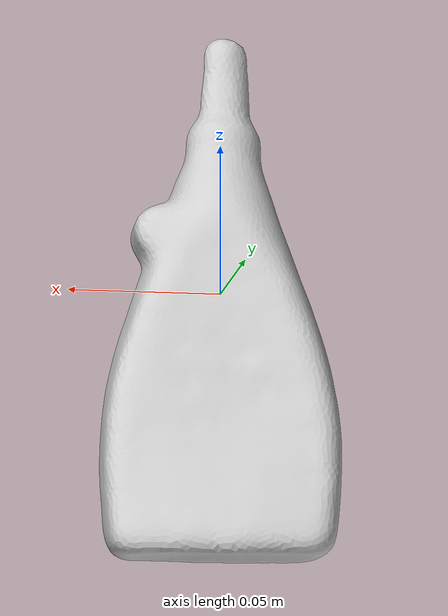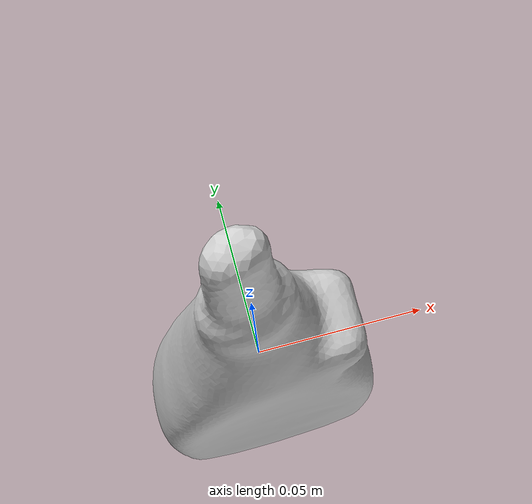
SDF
<?xml version="1.0" ?>
<sdf version="1.5">
  <model name="glue">
	<static>false</static>
    <pose>0 0 0 0 0 0</pose>
    <link name="link">
      <inertial>
        <mass>0.1</mass>
      </inertial>
      <collision name="collision">
        <geometry>
          <mesh>
            <uri>model://Glue/meshes/glue.dae</uri>
            <scale>1 1 1</scale>
          </mesh>
        </geometry>
      </collision>
      <visual name="visual">
        <geometry>
          <mesh>
            <uri>model://Glue/meshes/glue.dae</uri>
          </mesh>
        </geometry>
      </visual>
    </link>
  </model>
</sdf>
